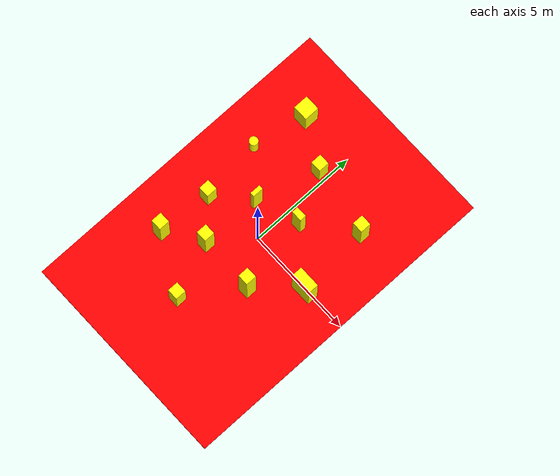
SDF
<sdf version="1.7">
 <world name="default">
  <light name="sun" type="directional">
   <pose>0 0 10 0 -0 0</pose>
   <diffuse>0.8 0.8 0.8 1</diffuse>
   <specular>0.2 0.2 0.2 1</specular>
   <attenuation>
    <range>1000</range>
    <constant>0.9</constant>
    <linear>0.01</linear>
    <quadratic>0.001</quadratic>
   </attenuation>
   <direction>-0.5 0.1 -0.9</direction>
   <spot><inner_angle>0</inner_angle><outer_angle>0</outer_angle><falloff>0</falloff></spot>
  </light>
  <gravity>0 0 -9.8</gravity>
  <magnetic_field>6e-06 2.3e-05 -4.2e-05</magnetic_field>
  <atmosphere type="adiabatic"/>
  <physics type="ode">
   <max_step_size>0.001</max_step_size>
   <real_time_factor>1</real_time_factor>
   <real_time_update_rate>1000</real_time_update_rate>
  </physics>
  <scene><ambient>0.4 0.4 0.4 1</ambient><background>0.7 0.7 0.7 1</background><shadows>1</shadows></scene>
  <spherical_coordinates>
   <surface_model>EARTH_WGS84</surface_model>
   <latitude_deg>0</latitude_deg>
   <longitude_deg>0</longitude_deg>
   <elevation>0</elevation>
   <heading_deg>0</heading_deg>
  </spherical_coordinates>
  <model name="gazebo_walless">
   <link name="floor">
    <inertial>
     <mass>0</mass>
     <inertia><ixx>0</ixx><ixy>0</ixy><ixz>0</ixz><iyy>0</iyy><iyz>0</iyz><izz>0</izz></inertia>
    </inertial>
    <pose>0.042857 -0.014286 -0.692857 0 -0 0</pose>
    <visual name="visual_15">
     <geometry><box><size>10 15 0.05</size></box></geometry>
     <material>
      <lighting>0</lighting>
      <shader type="pixel"><normal_map>__default__</normal_map></shader>
      <ambient>0 0 0 0</ambient>
      <diffuse>1 0 0 1</diffuse>
      <specular>1 1 1 1</specular>
      <emissive>0 0 0 0</emissive>
     </material>
    </visual>
    <collision name="collision">
     <geometry><box><size>10 15 0.05</size></box></geometry>
     <surface>
      <friction>
       <ode><mu>1</mu><mu2>1</mu2><fdir1>0 0 0</fdir1><slip1>0</slip1><slip2>0</slip2></ode>
       <torsional>
        <coefficient>1</coefficient>
        <patch_radius>0</patch_radius>
        <surface_radius>0</surface_radius>
        <use_patch_radius>1</use_patch_radius>
        <ode><slip>0</slip></ode>
       </torsional>
      </friction>
      <bounce><restitution_coefficient>0</restitution_coefficient><threshold>1e+06</threshold></bounce>
      <contact>
       <collide_without_contact>0</collide_without_contact>
       <collide_without_contact_bitmask>1</collide_without_contact_bitmask>
       <collide_bitmask>1</collide_bitmask>
       <ode>
        <soft_cfm>0</soft_cfm>
        <soft_erp>0.2</soft_erp>
        <kp>1e+13</kp>
        <kd>1</kd>
        <max_vel>0.01</max_vel>
        <min_depth>0</min_depth>
       </ode>
       <bullet>
        <split_impulse>1</split_impulse>
        <split_impulse_penetration_threshold>-0.01</split_impulse_penetration_threshold>
        <soft_cfm>0</soft_cfm>
        <soft_erp>0.2</soft_erp>
        <kp>1e+13</kp>
        <kd>1</kd>
       </bullet>
      </contact>
     </surface>
    </collision>
   </link>
   <link name="link_2">
    <inertial>
     <mass>0</mass>
     <inertia><ixx>0</ixx><ixy>0</ixy><ixz>0</ixz><iyy>0</iyy><iyz>0</iyz><izz>0</izz></inertia>
    </inertial>
    <pose>-1.15714 0.985714 0.28 0 -0 0</pose>
    <visual name="visual_2">
     <geometry><box><size>0.2 0.5 2</size></box></geometry>
     <material>
      <lighting>1</lighting>
      <shader type="pixel"><normal_map>__default__</normal_map></shader>
      <ambient>0 0 0 0</ambient>
      <diffuse>1 1 0 1</diffuse>
      <specular>1 1 1 1</specular>
      <emissive>0 0 0 0</emissive>
     </material>
    </visual>
    <collision name="collision">
     <geometry><box><size>0.2 0.5 2</size></box></geometry>
     <surface>
      <friction>
       <ode><mu>1</mu><mu2>1</mu2><fdir1>0 0 0</fdir1><slip1>0</slip1><slip2>0</slip2></ode>
       <torsional>
        <coefficient>1</coefficient>
        <patch_radius>0</patch_radius>
        <surface_radius>0</surface_radius>
        <use_patch_radius>1</use_patch_radius>
        <ode><slip>0</slip></ode>
       </torsional>
      </friction>
      <bounce><restitution_coefficient>0</restitution_coefficient><threshold>1e+06</threshold></bounce>
      <contact>
       <collide_without_contact>0</collide_without_contact>
       <collide_without_contact_bitmask>1</collide_without_contact_bitmask>
       <collide_bitmask>1</collide_bitmask>
       <ode>
        <soft_cfm>0</soft_cfm>
        <soft_erp>0.2</soft_erp>
        <kp>1e+13</kp>
        <kd>1</kd>
        <max_vel>0.01</max_vel>
        <min_depth>0</min_depth>
       </ode>
       <bullet>
        <split_impulse>1</split_impulse>
        <split_impulse_penetration_threshold>-0.01</split_impulse_penetration_threshold>
        <soft_cfm>0</soft_cfm>
        <soft_erp>0.2</soft_erp>
        <kp>1e+13</kp>
        <kd>1</kd>
       </bullet>
      </contact>
     </surface>
    </collision>
   </link>
   <link name="link_2_clone">
    <inertial>
     <mass>0</mass>
     <inertia><ixx>0</ixx><ixy>0</ixy><ixz>0</ixz><iyy>0</iyy><iyz>0</iyz><izz>0</izz></inertia>
    </inertial>
    <pose>0.723644 1.61146 0.28 0 -0 0</pose>
    <visual name="visual_3">
     <geometry><box><size>0.5 0.3 2</size></box></geometry>
     <material>
      <lighting>1</lighting>
      <shader type="pixel"><normal_map>__default__</normal_map></shader>
      <ambient>0 0 0 0</ambient>
      <diffuse>1 1 0 1</diffuse>
      <specular>1 1 1 1</specular>
      <emissive>0 0 0 0</emissive>
     </material>
    </visual>
    <collision name="collision">
     <geometry><box><size>0.5 0.3 2</size></box></geometry>
     <surface>
      <friction>
       <ode><mu>1</mu><mu2>1</mu2><fdir1>0 0 0</fdir1><slip1>0</slip1><slip2>0</slip2></ode>
       <torsional>
        <coefficient>1</coefficient>
        <patch_radius>0</patch_radius>
        <surface_radius>0</surface_radius>
        <use_patch_radius>1</use_patch_radius>
        <ode><slip>0</slip></ode>
       </torsional>
      </friction>
      <bounce><restitution_coefficient>0</restitution_coefficient><threshold>1e+06</threshold></bounce>
      <contact>
       <collide_without_contact>0</collide_without_contact>
       <collide_without_contact_bitmask>1</collide_without_contact_bitmask>
       <collide_bitmask>1</collide_bitmask>
       <ode>
        <soft_cfm>0</soft_cfm>
        <soft_erp>0.2</soft_erp>
        <kp>1e+13</kp>
        <kd>1</kd>
        <max_vel>0.01</max_vel>
        <min_depth>0</min_depth>
       </ode>
       <bullet>
        <split_impulse>1</split_impulse>
        <split_impulse_penetration_threshold>-0.01</split_impulse_penetration_threshold>
        <soft_cfm>0</soft_cfm>
        <soft_erp>0.2</soft_erp>
        <kp>1e+13</kp>
        <kd>1</kd>
       </bullet>
      </contact>
     </surface>
    </collision>
   </link>
   <link name="link_2_clone_0">
    <inertial>
     <mass>0</mass>
     <inertia><ixx>0</ixx><ixy>0</ixy><ixz>0</ixz><iyy>0</iyy><iyz>0</iyz><izz>0</izz></inertia>
    </inertial>
    <pose>-1.25608 -1.73065 0.28 0 -0 0</pose>
    <visual name="visual_4">
     <geometry><box><size>0.5 0.5 2</size></box></geometry>
     <material>
      <lighting>1</lighting>
      <shader type="pixel"><normal_map>__default__</normal_map></shader>
      <ambient>0 0 0 0</ambient>
      <diffuse>1 1 0 1</diffuse>
      <specular>1 1 1 1</specular>
      <emissive>0 0 0 0</emissive>
     </material>
    </visual>
    <collision name="collision">
     <geometry><box><size>0.5 0.5 2</size></box></geometry>
     <surface>
      <friction>
       <ode><mu>1</mu><mu2>1</mu2><fdir1>0 0 0</fdir1><slip1>0</slip1><slip2>0</slip2></ode>
       <torsional>
        <coefficient>1</coefficient>
        <patch_radius>0</patch_radius>
        <surface_radius>0</surface_radius>
        <use_patch_radius>1</use_patch_radius>
        <ode><slip>0</slip></ode>
       </torsional>
      </friction>
      <bounce><restitution_coefficient>0</restitution_coefficient><threshold>1e+06</threshold></bounce>
      <contact>
       <collide_without_contact>0</collide_without_contact>
       <collide_without_contact_bitmask>1</collide_without_contact_bitmask>
       <collide_bitmask>1</collide_bitmask>
       <ode>
        <soft_cfm>0</soft_cfm>
        <soft_erp>0.2</soft_erp>
        <kp>1e+13</kp>
        <kd>1</kd>
        <max_vel>0.01</max_vel>
        <min_depth>0</min_depth>
       </ode>
       <bullet>
        <split_impulse>1</split_impulse>
        <split_impulse_penetration_threshold>-0.01</split_impulse_penetration_threshold>
        <soft_cfm>0</soft_cfm>
        <soft_erp>0.2</soft_erp>
        <kp>1e+13</kp>
        <kd>1</kd>
       </bullet>
      </contact>
     </surface>
    </collision>
   </link>
   <link name="link_2_clone_clone">
    <inertial>
     <mass>0</mass>
     <inertia><ixx>0</ixx><ixy>0</ixy><ixz>0</ixz><iyy>0</iyy><iyz>0</iyz><izz>0</izz></inertia>
    </inertial>
    <pose>2.93656 -0.088649 0.28 0 -0 0</pose>
    <visual name="visual_5">
     <geometry><box><size>1 0.5 2</size></box></geometry>
     <material>
      <lighting>1</lighting>
      <shader type="pixel"><normal_map>__default__</normal_map></shader>
      <ambient>0 0 0 0</ambient>
      <diffuse>1 1 0 1</diffuse>
      <specular>1 1 1 1</specular>
      <emissive>0 0 0 0</emissive>
     </material>
    </visual>
    <collision name="collision">
     <geometry><cylinder><radius>0.2</radius><length>1</length></cylinder></geometry>
     <surface>
      <friction>
       <ode><mu>1</mu><mu2>1</mu2><fdir1>0 0 0</fdir1><slip1>0</slip1><slip2>0</slip2></ode>
       <torsional>
        <coefficient>1</coefficient>
        <patch_radius>0</patch_radius>
        <surface_radius>0</surface_radius>
        <use_patch_radius>1</use_patch_radius>
        <ode><slip>0</slip></ode>
       </torsional>
      </friction>
      <bounce><restitution_coefficient>0</restitution_coefficient><threshold>1e+06</threshold></bounce>
      <contact>
       <collide_without_contact>0</collide_without_contact>
       <collide_without_contact_bitmask>1</collide_without_contact_bitmask>
       <collide_bitmask>1</collide_bitmask>
       <ode>
        <soft_cfm>0</soft_cfm>
        <soft_erp>0.2</soft_erp>
        <kp>1e+13</kp>
        <kd>1</kd>
        <max_vel>0.01</max_vel>
        <min_depth>0</min_depth>
       </ode>
       <bullet>
        <split_impulse>1</split_impulse>
        <split_impulse_penetration_threshold>-0.01</split_impulse_penetration_threshold>
        <soft_cfm>0</soft_cfm>
        <soft_erp>0.2</soft_erp>
        <kp>1e+13</kp>
        <kd>1</kd>
       </bullet>
      </contact>
     </surface>
    </collision>
   </link>
   <link name="link_2_clone_clone_0">
    <inertial>
     <mass>0</mass>
     <inertia><ixx>0</ixx><ixy>0</ixy><ixz>0</ixz><iyy>0</iyy><iyz>0</iyz><izz>0</izz></inertia>
    </inertial>
    <pose>-2.858 -2.76188 0.28 0 -0 0</pose>
    <visual name="visual_16">
     <geometry><box><size>0.5 0.5 2</size></box></geometry>
     <material>
      <lighting>1</lighting>
      <shader type="pixel"><normal_map>__default__</normal_map></shader>
      <ambient>0 0 0 0</ambient>
      <diffuse>1 1 0 1</diffuse>
      <specular>1 1 1 1</specular>
      <emissive>0 0 0 0</emissive>
     </material>
    </visual>
    <collision name="collision">
     <geometry><cylinder><radius>0.2</radius><length>1</length></cylinder></geometry>
     <surface>
      <friction>
       <ode><mu>1</mu><mu2>1</mu2><fdir1>0 0 0</fdir1><slip1>0</slip1><slip2>0</slip2></ode>
       <torsional>
        <coefficient>1</coefficient>
        <patch_radius>0</patch_radius>
        <surface_radius>0</surface_radius>
        <use_patch_radius>1</use_patch_radius>
        <ode><slip>0</slip></ode>
       </torsional>
      </friction>
      <bounce><restitution_coefficient>0</restitution_coefficient><threshold>1e+06</threshold></bounce>
      <contact>
       <collide_without_contact>0</collide_without_contact>
       <collide_without_contact_bitmask>1</collide_without_contact_bitmask>
       <collide_bitmask>1</collide_bitmask>
       <ode>
        <soft_cfm>0</soft_cfm>
        <soft_erp>0.2</soft_erp>
        <kp>1e+13</kp>
        <kd>1</kd>
        <max_vel>0.01</max_vel>
        <min_depth>0</min_depth>
       </ode>
       <bullet>
        <split_impulse>1</split_impulse>
        <split_impulse_penetration_threshold>-0.01</split_impulse_penetration_threshold>
        <soft_cfm>0</soft_cfm>
        <soft_erp>0.2</soft_erp>
        <kp>1e+13</kp>
        <kd>1</kd>
       </bullet>
      </contact>
     </surface>
    </collision>
   </link>
   <link name="link_2_clone_clone_1">
    <inertial>
     <mass>0</mass>
     <inertia><ixx>0</ixx><ixy>0</ixy><ixz>0</ixz><iyy>0</iyy><iyz>0</iyz><izz>0</izz></inertia>
    </inertial>
    <pose>-2.48114 4.96584 0.1 0 -0 0</pose>
    <visual name="visual_6">
     <geometry><box><size>0.7 0.7 1.5</size></box></geometry>
     <material>
      <lighting>1</lighting>
      <shader type="pixel"><normal_map>__default__</normal_map></shader>
      <ambient>0 0 0 0</ambient>
      <diffuse>1 1 0 1</diffuse>
      <specular>1 1 1 1</specular>
      <emissive>0 0 0 0</emissive>
     </material>
    </visual>
    <collision name="collision">
     <geometry><box><size>0.7 0.7 1.5</size></box></geometry>
     <surface>
      <friction>
       <ode><mu>1</mu><mu2>1</mu2><fdir1>0 0 0</fdir1><slip1>0</slip1><slip2>0</slip2></ode>
       <torsional>
        <coefficient>1</coefficient>
        <patch_radius>0</patch_radius>
        <surface_radius>0</surface_radius>
        <use_patch_radius>1</use_patch_radius>
        <ode><slip>0</slip></ode>
       </torsional>
      </friction>
      <bounce><restitution_coefficient>0</restitution_coefficient><threshold>1e+06</threshold></bounce>
      <contact>
       <collide_without_contact>0</collide_without_contact>
       <collide_without_contact_bitmask>1</collide_without_contact_bitmask>
       <collide_bitmask>1</collide_bitmask>
       <ode>
        <soft_cfm>0</soft_cfm>
        <soft_erp>0.2</soft_erp>
        <kp>1e+13</kp>
        <kd>1</kd>
        <max_vel>0.01</max_vel>
        <min_depth>0</min_depth>
       </ode>
       <bullet>
        <split_impulse>1</split_impulse>
        <split_impulse_penetration_threshold>-0.01</split_impulse_penetration_threshold>
        <soft_cfm>0</soft_cfm>
        <soft_erp>0.2</soft_erp>
        <kp>1e+13</kp>
        <kd>1</kd>
       </bullet>
      </contact>
     </surface>
    </collision>
   </link>
   <link name="link_2_clone_clone_2">
    <inertial>
     <mass>0</mass>
     <inertia><ixx>0</ixx><ixy>0</ixy><ixz>0</ixz><iyy>0</iyy><iyz>0</iyz><izz>0</izz></inertia>
    </inertial>
    <pose>-3.01573 2.52173 -0.217857 0 -0 0</pose>
    <gravity>0</gravity>
    <visual name="visual_1">
     <geometry><cylinder><radius>0.2</radius><length>1</length></cylinder></geometry>
     <material>
      <lighting>1</lighting>
      <shader type="pixel"><normal_map>__default__</normal_map></shader>
      <ambient>0 0 0 0</ambient>
      <diffuse>1 1 0 1</diffuse>
      <specular>1 1 1 1</specular>
      <emissive>0 0 0 0</emissive>
     </material>
    </visual>
    <collision name="collision">
     <geometry><cylinder><radius>0.2</radius><length>1</length></cylinder></geometry>
     <surface>
      <friction>
       <ode><mu>1</mu><mu2>1</mu2><fdir1>0 0 0</fdir1><slip1>0</slip1><slip2>0</slip2></ode>
       <torsional>
        <coefficient>1</coefficient>
        <patch_radius>0</patch_radius>
        <surface_radius>0</surface_radius>
        <use_patch_radius>1</use_patch_radius>
        <ode><slip>0</slip></ode>
       </torsional>
      </friction>
      <bounce><restitution_coefficient>0</restitution_coefficient><threshold>1e+06</threshold></bounce>
      <contact>
       <collide_without_contact>0</collide_without_contact>
       <collide_without_contact_bitmask>1</collide_without_contact_bitmask>
       <collide_bitmask>1</collide_bitmask>
       <ode>
        <soft_cfm>0</soft_cfm>
        <soft_erp>0.2</soft_erp>
        <kp>1e+13</kp>
        <kd>1</kd>
        <max_vel>0.01</max_vel>
        <min_depth>0</min_depth>
       </ode>
       <bullet>
        <split_impulse>1</split_impulse>
        <split_impulse_penetration_threshold>-0.01</split_impulse_penetration_threshold>
        <soft_cfm>0</soft_cfm>
        <soft_erp>0.2</soft_erp>
        <kp>1e+13</kp>
        <kd>1</kd>
       </bullet>
      </contact>
     </surface>
    </collision>
   </link>
   <link name="link_4">
    <inertial>
     <mass>0</mass>
     <inertia><ixx>0</ixx><ixy>0</ixy><ixz>0</ixz><iyy>0</iyy><iyz>0</iyz><izz>0</izz></inertia>
    </inertial>
    <pose>1.32286 -1.78429 0.55 0 -0 0</pose>
    <visual name="visual_11">
     <geometry><box><size>0.5 0.5 2.5</size></box></geometry>
     <material>
      <lighting>1</lighting>
      <shader type="pixel"><normal_map>__default__</normal_map></shader>
      <ambient>0 0 0 0</ambient>
      <diffuse>1 1 0 1</diffuse>
      <specular>1 1 1 1</specular>
      <emissive>0 0 0 0</emissive>
     </material>
    </visual>
    <collision name="collision">
     <geometry><box><size>0.5 0.5 2.5</size></box></geometry>
     <surface>
      <friction>
       <ode><mu>1</mu><mu2>1</mu2><fdir1>0 0 0</fdir1><slip1>0</slip1><slip2>0</slip2></ode>
       <torsional>
        <coefficient>1</coefficient>
        <patch_radius>0</patch_radius>
        <surface_radius>0</surface_radius>
        <use_patch_radius>1</use_patch_radius>
        <ode><slip>0</slip></ode>
       </torsional>
      </friction>
      <bounce><restitution_coefficient>0</restitution_coefficient><threshold>1e+06</threshold></bounce>
      <contact>
       <collide_without_contact>0</collide_without_contact>
       <collide_without_contact_bitmask>1</collide_without_contact_bitmask>
       <collide_bitmask>1</collide_bitmask>
       <ode>
        <soft_cfm>0</soft_cfm>
        <soft_erp>0.2</soft_erp>
        <kp>1e+13</kp>
        <kd>1</kd>
        <max_vel>0.01</max_vel>
        <min_depth>0</min_depth>
       </ode>
       <bullet>
        <split_impulse>1</split_impulse>
        <split_impulse_penetration_threshold>-0.01</split_impulse_penetration_threshold>
        <soft_cfm>0</soft_cfm>
        <soft_erp>0.2</soft_erp>
        <kp>1e+13</kp>
        <kd>1</kd>
       </bullet>
      </contact>
     </surface>
    </collision>
   </link>
   <link name="link_4_clone">
    <inertial>
     <mass>0</mass>
     <inertia><ixx>0</ixx><ixy>0</ixy><ixz>0</ixz><iyy>0</iyy><iyz>0</iyz><izz>0</izz></inertia>
    </inertial>
    <pose>-0.343697 -4.13923 0.002143 0 -0 0</pose>
    <visual name="visual_10">
     <geometry><box><size>0.5 0.5 1.5</size></box></geometry>
     <material>
      <lighting>1</lighting>
      <shader type="pixel"><normal_map>__default__</normal_map></shader>
      <ambient>0 0 0 0</ambient>
      <diffuse>1 1 0 1</diffuse>
      <specular>1 1 1 1</specular>
      <emissive>0 0 0 0</emissive>
     </material>
    </visual>
    <collision name="collision">
     <geometry><box><size>0.5 0.5 1.5</size></box></geometry>
     <surface>
      <friction>
       <ode><mu>1</mu><mu2>1</mu2><fdir1>0 0 0</fdir1><slip1>0</slip1><slip2>0</slip2></ode>
       <torsional>
        <coefficient>1</coefficient>
        <patch_radius>0</patch_radius>
        <surface_radius>0</surface_radius>
        <use_patch_radius>1</use_patch_radius>
        <ode><slip>0</slip></ode>
       </torsional>
      </friction>
      <bounce><restitution_coefficient>0</restitution_coefficient><threshold>1e+06</threshold></bounce>
      <contact>
       <collide_without_contact>0</collide_without_contact>
       <collide_without_contact_bitmask>1</collide_without_contact_bitmask>
       <collide_bitmask>1</collide_bitmask>
       <ode>
        <soft_cfm>0</soft_cfm>
        <soft_erp>0.2</soft_erp>
        <kp>1e+13</kp>
        <kd>1</kd>
        <max_vel>0.01</max_vel>
        <min_depth>0</min_depth>
       </ode>
       <bullet>
        <split_impulse>1</split_impulse>
        <split_impulse_penetration_threshold>-0.01</split_impulse_penetration_threshold>
        <soft_cfm>0</soft_cfm>
        <soft_erp>0.2</soft_erp>
        <kp>1e+13</kp>
        <kd>1</kd>
       </bullet>
      </contact>
     </surface>
    </collision>
   </link>
   <link name="link_4_clone_0">
    <inertial>
     <mass>0</mass>
     <inertia><ixx>0</ixx><ixy>0</ixy><ixz>0</ixz><iyy>0</iyy><iyz>0</iyz><izz>0</izz></inertia>
    </inertial>
    <pose>-2.69028 -0.310327 0 0 -0 0</pose>
    <visual name="visual_12">
     <geometry><box><size>0.5 0.5 1.5</size></box></geometry>
     <material>
      <lighting>1</lighting>
      <shader type="pixel"><normal_map>__default__</normal_map></shader>
      <ambient>0 0 0 0</ambient>
      <diffuse>1 1 0 1</diffuse>
      <specular>1 1 1 1</specular>
      <emissive>0 0 0 0</emissive>
     </material>
    </visual>
    <collision name="collision">
     <geometry><box><size>0.5 0.5 1.5</size></box></geometry>
     <surface>
      <friction>
       <ode><mu>1</mu><mu2>1</mu2><fdir1>0 0 0</fdir1><slip1>0</slip1><slip2>0</slip2></ode>
       <torsional>
        <coefficient>1</coefficient>
        <patch_radius>0</patch_radius>
        <surface_radius>0</surface_radius>
        <use_patch_radius>1</use_patch_radius>
        <ode><slip>0</slip></ode>
       </torsional>
      </friction>
      <bounce><restitution_coefficient>0</restitution_coefficient><threshold>1e+06</threshold></bounce>
      <contact>
       <collide_without_contact>0</collide_without_contact>
       <collide_without_contact_bitmask>1</collide_without_contact_bitmask>
       <collide_bitmask>1</collide_bitmask>
       <ode>
        <soft_cfm>0</soft_cfm>
        <soft_erp>0.2</soft_erp>
        <kp>1e+13</kp>
        <kd>1</kd>
        <max_vel>0.01</max_vel>
        <min_depth>0</min_depth>
       </ode>
       <bullet>
        <split_impulse>1</split_impulse>
        <split_impulse_penetration_threshold>-0.01</split_impulse_penetration_threshold>
        <soft_cfm>0</soft_cfm>
        <soft_erp>0.2</soft_erp>
        <kp>1e+13</kp>
        <kd>1</kd>
       </bullet>
      </contact>
     </surface>
    </collision>
   </link>
   <link name="link_4_clone_clone">
    <inertial>
     <mass>0</mass>
     <inertia><ixx>0</ixx><ixy>0</ixy><ixz>0</ixz><iyy>0</iyy><iyz>0</iyz><izz>0</izz></inertia>
    </inertial>
    <pose>2.74667 3.21727 0.28 0 -0 0</pose>
    <visual name="visual_13">
     <geometry><box><size>0.5 0.5 2</size></box></geometry>
     <material>
      <lighting>1</lighting>
      <shader type="pixel"><normal_map>__default__</normal_map></shader>
      <ambient>0 0 0 0</ambient>
      <diffuse>1 1 0 1</diffuse>
      <specular>1 1 1 1</specular>
      <emissive>0 0 0 0</emissive>
     </material>
    </visual>
    <collision name="collision">
     <geometry><box><size>0.5 0.5 2</size></box></geometry>
     <surface>
      <friction>
       <ode><mu>1</mu><mu2>1</mu2><fdir1>0 0 0</fdir1><slip1>0</slip1><slip2>0</slip2></ode>
       <torsional>
        <coefficient>1</coefficient>
        <patch_radius>0</patch_radius>
        <surface_radius>0</surface_radius>
        <use_patch_radius>1</use_patch_radius>
        <ode><slip>0</slip></ode>
       </torsional>
      </friction>
      <bounce><restitution_coefficient>0</restitution_coefficient><threshold>1e+06</threshold></bounce>
      <contact>
       <collide_without_contact>0</collide_without_contact>
       <collide_without_contact_bitmask>1</collide_without_contact_bitmask>
       <collide_bitmask>1</collide_bitmask>
       <ode>
        <soft_cfm>0</soft_cfm>
        <soft_erp>0.2</soft_erp>
        <kp>1e+13</kp>
        <kd>1</kd>
        <max_vel>0.01</max_vel>
        <min_depth>0</min_depth>
       </ode>
       <bullet>
        <split_impulse>1</split_impulse>
        <split_impulse_penetration_threshold>-0.01</split_impulse_penetration_threshold>
        <soft_cfm>0</soft_cfm>
        <soft_erp>0.2</soft_erp>
        <kp>1e+13</kp>
        <kd>1</kd>
       </bullet>
      </contact>
     </surface>
    </collision>
   </link>
   <link name="link_4_clone_clone_0">
    <inertial>
     <mass>0</mass>
     <inertia><ixx>0</ixx><ixy>0</ixy><ixz>0</ixz><iyy>0</iyy><iyz>0</iyz><izz>0</izz></inertia>
    </inertial>
    <pose>-0.388556 3.81123 0 0 -0 0</pose>
    <visual name="visual_14">
     <geometry><box><size>0.5 0.5 1.5</size></box></geometry>
     <material>
      <lighting>1</lighting>
      <shader type="pixel"><normal_map>__default__</normal_map></shader>
      <ambient>0 0 0 0</ambient>
      <diffuse>1 1 0 1</diffuse>
      <specular>1 1 1 1</specular>
      <emissive>0 0 0 0</emissive>
     </material>
    </visual>
    <collision name="collision">
     <geometry><box><size>0.5 0.5 1.5</size></box></geometry>
     <surface>
      <friction>
       <ode><mu>1</mu><mu2>1</mu2><fdir1>0 0 0</fdir1><slip1>0</slip1><slip2>0</slip2></ode>
       <torsional>
        <coefficient>1</coefficient>
        <patch_radius>0</patch_radius>
        <surface_radius>0</surface_radius>
        <use_patch_radius>1</use_patch_radius>
        <ode><slip>0</slip></ode>
       </torsional>
      </friction>
      <bounce><restitution_coefficient>0</restitution_coefficient><threshold>1e+06</threshold></bounce>
      <contact>
       <collide_without_contact>0</collide_without_contact>
       <collide_without_contact_bitmask>1</collide_without_contact_bitmask>
       <collide_bitmask>1</collide_bitmask>
       <ode>
        <soft_cfm>0</soft_cfm>
        <soft_erp>0.2</soft_erp>
        <kp>1e+13</kp>
        <kd>1</kd>
        <max_vel>0.01</max_vel>
        <min_depth>0</min_depth>
       </ode>
       <bullet>
        <split_impulse>1</split_impulse>
        <split_impulse_penetration_threshold>-0.01</split_impulse_penetration_threshold>
        <soft_cfm>0</soft_cfm>
        <soft_erp>0.2</soft_erp>
        <kp>1e+13</kp>
        <kd>1</kd>
       </bullet>
      </contact>
     </surface>
    </collision>
   </link>
   <joint name="link_0_JOINT_0_1" type="fixed">
    <parent>floor</parent>
    <child>link_2_clone</child>
    <physics>
     <ode><limit><cfm>0</cfm><erp>0.2</erp></limit><suspension><cfm>0</cfm><erp>0.2</erp></suspension></ode>
    </physics>
   </joint>
   <joint name="link_0_JOINT_1_0" type="fixed">
    <parent>floor</parent>
    <child>link_2_clone_0</child>
    <physics>
     <ode><limit><cfm>0</cfm><erp>0.2</erp></limit><suspension><cfm>0</cfm><erp>0.2</erp></suspension></ode>
    </physics>
   </joint>
   <joint name="link_0_JOINT_2" type="fixed">
    <parent>floor</parent>
    <child>link_2_clone_clone</child>
    <physics>
     <ode><limit><cfm>0</cfm><erp>0.2</erp></limit><suspension><cfm>0</cfm><erp>0.2</erp></suspension></ode>
    </physics>
   </joint>
   <joint name="link_0_JOINT_3_0" type="fixed">
    <parent>floor</parent>
    <child>link_2_clone_clone_1</child>
    <physics>
     <ode><limit><cfm>0</cfm><erp>0.2</erp></limit><suspension><cfm>0</cfm><erp>0.2</erp></suspension></ode>
    </physics>
   </joint>
   <joint name="link_0_JOINT_4_0" type="fixed">
    <parent>floor</parent>
    <child>link_2_clone_clone_2</child>
    <physics>
     <ode><limit><cfm>0</cfm><erp>0.2</erp></limit><suspension><cfm>0</cfm><erp>0.2</erp></suspension></ode>
    </physics>
   </joint>
   <joint name="link_0_JOINT_5_0" type="fixed">
    <parent>floor</parent>
    <child>link_2_clone_clone_0</child>
    <physics>
     <ode><limit><cfm>0</cfm><erp>0.2</erp></limit><suspension><cfm>0</cfm><erp>0.2</erp></suspension></ode>
    </physics>
   </joint>
   <joint name="link_0_JOINT_5" type="fixed">
    <parent>floor</parent>
    <child>link_2</child>
    <physics>
     <ode><limit><cfm>0</cfm><erp>0.2</erp></limit><suspension><cfm>0</cfm><erp>0.2</erp></suspension></ode>
    </physics>
   </joint>
   <joint name="link_0_JOINT_6_0" type="fixed">
    <parent>floor</parent>
    <child>link_4_clone</child>
    <physics>
     <ode><limit><cfm>0</cfm><erp>0.2</erp></limit><suspension><cfm>0</cfm><erp>0.2</erp></suspension></ode>
    </physics>
   </joint>
   <joint name="link_0_JOINT_6" type="fixed">
    <parent>floor</parent>
    <child>link_4</child>
    <physics>
     <ode><limit><cfm>0</cfm><erp>0.2</erp></limit><suspension><cfm>0</cfm><erp>0.2</erp></suspension></ode>
    </physics>
   </joint>
   <joint name="link_0_JOINT_7" type="fixed">
    <parent>floor</parent>
    <child>link_4_clone_0</child>
    <physics>
     <ode><limit><cfm>0</cfm><erp>0.2</erp></limit><suspension><cfm>0</cfm><erp>0.2</erp></suspension></ode>
    </physics>
   </joint>
   <joint name="link_0_JOINT_8" type="fixed">
    <parent>floor</parent>
    <child>link_4_clone_clone_0</child>
    <physics>
     <ode><limit><cfm>0</cfm><erp>0.2</erp></limit><suspension><cfm>0</cfm><erp>0.2</erp></suspension></ode>
    </physics>
   </joint>
   <joint name="link_0_JOINT_9" type="fixed">
    <parent>floor</parent>
    <child>link_4_clone_clone</child>
    <physics>
     <ode><limit><cfm>0</cfm><erp>0.2</erp></limit><suspension><cfm>0</cfm><erp>0.2</erp></suspension></ode>
    </physics>
   </joint>
   <static>0</static>
   <pose>0 0 0.7 0 -0 0</pose>
  </model>
  <plugin filename="ignition-gazebo-collada-world-exporter-system" name="ignition::gazebo::systems::ColladaWorldExporter"/>
 </world>
</sdf>
